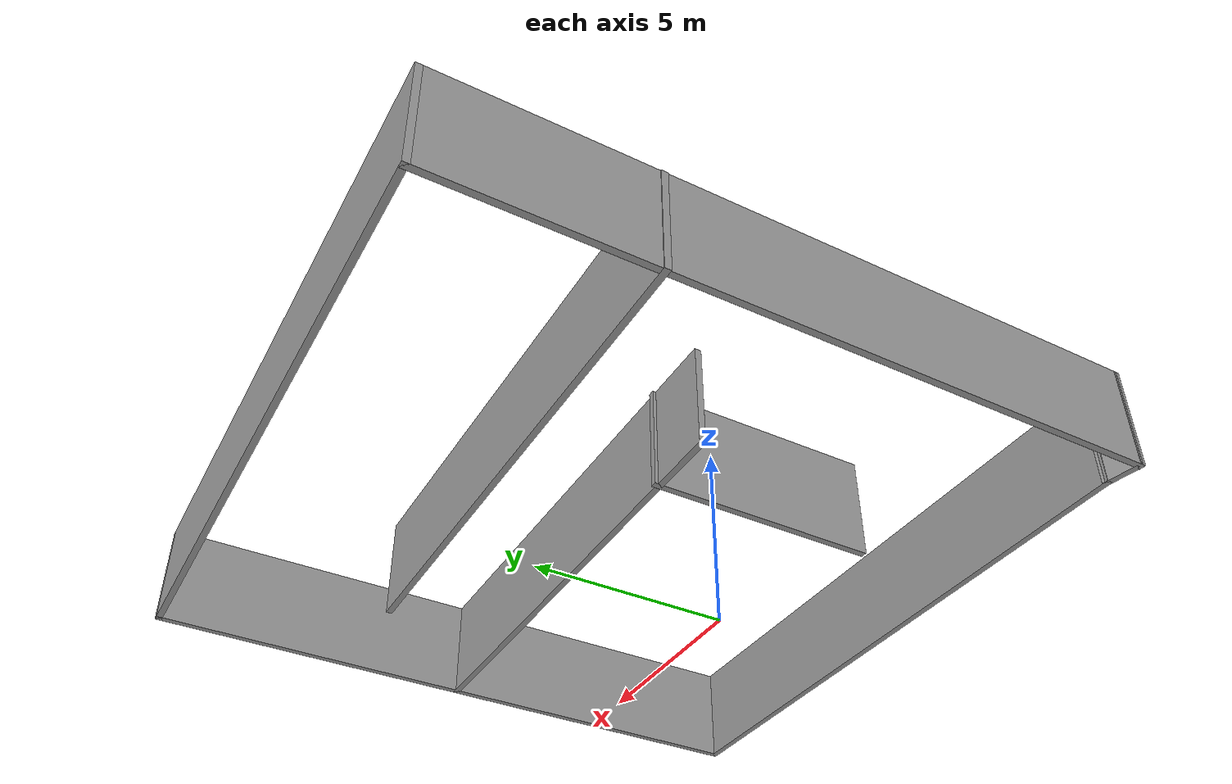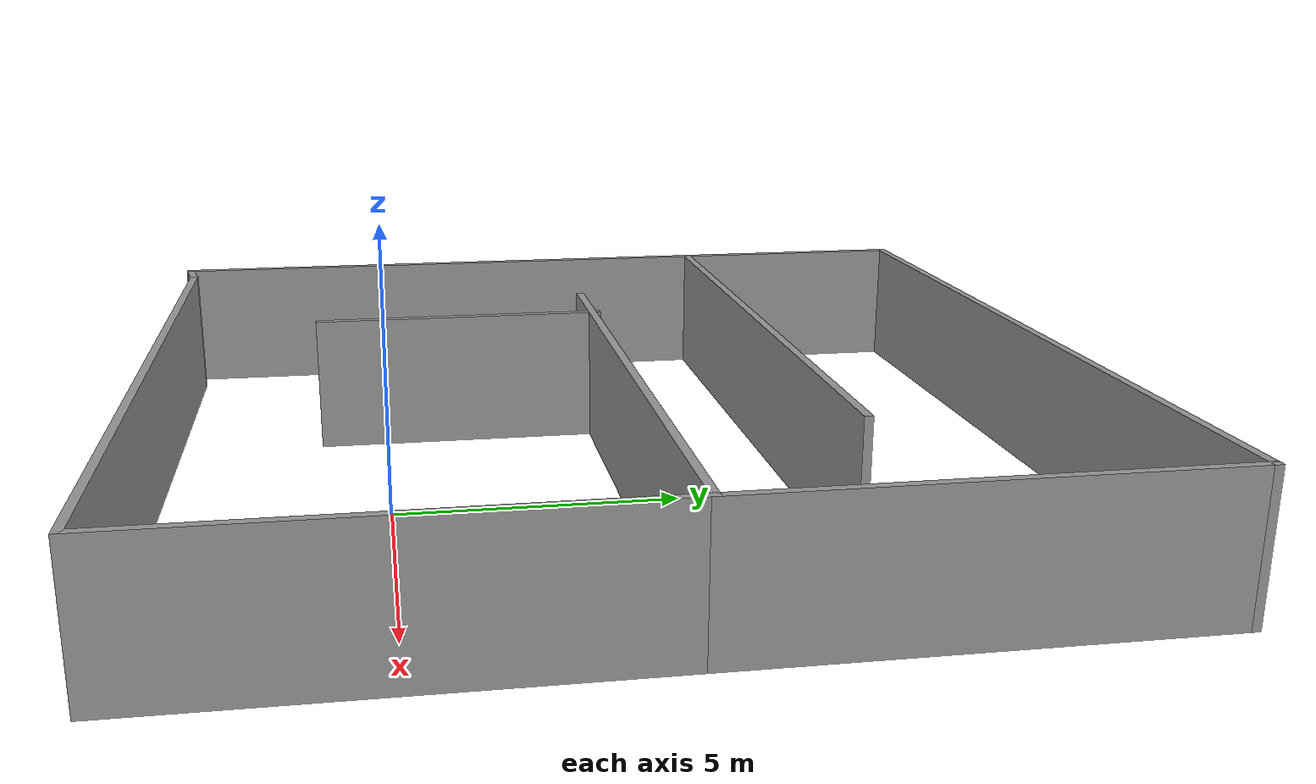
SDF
<?xml version='1.0'?>
<sdf version='1.7'>
  <model name='ststic_maze'>
    <pose>-1.4573 3.881 0 0 -0 0</pose>
    <link name='Wall_11'>
      <collision name='Wall_11_Collision'>
        <geometry>
          <box>
            <size>13 0.15 2.5</size>
          </box>
        </geometry>
        <pose>0 0 1.25 0 -0 0</pose>
      </collision>
      <visual name='Wall_11_Visual'>
        <pose>0 0 1.25 0 -0 0</pose>
        <geometry>
          <box>
            <size>13 0.15 2.5</size>
          </box>
        </geometry>
        <material>
          <script>
            <uri>file://media/materials/scripts/gazebo.material</uri>
            <name>Gazebo/Grey</name>
          </script>
          <ambient>1 1 1 1</ambient>
        </material>
        <meta>
          <layer>0</layer>
        </meta>
      </visual>
      <pose>-1.50972 3.27833 0 0 -0 0</pose>
    </link>
    <link name='Wall_13'>
      <collision name='Wall_13_Collision'>
        <geometry>
          <box>
            <size>5.5 0.15 2.5</size>
          </box>
        </geometry>
        <pose>0 0 1.25 0 -0 0</pose>
      </collision>
      <visual name='Wall_13_Visual'>
        <pose>0 0 1.25 0 -0 0</pose>
        <geometry>
          <box>
            <size>5.5 0.15 2.5</size>
          </box>
        </geometry>
        <material>
          <script>
            <uri>file://media/materials/scripts/gazebo.material</uri>
            <name>Gazebo/Grey</name>
          </script>
          <ambient>1 1 1 1</ambient>
        </material>
        <meta>
          <layer>0</layer>
        </meta>
      </visual>
      <pose>-2.55084 -2.39451 0 0 -0 -1.5708</pose>
    </link>
    <link name='Wall_2'>
      <collision name='Wall_2_Collision'>
        <geometry>
          <box>
            <size>15.25 0.15 2.5</size>
          </box>
        </geometry>
        <pose>0 0 1.25 0 -0 0</pose>
      </collision>
      <visual name='Wall_2_Visual'>
        <pose>0 0 1.25 0 -0 0</pose>
        <geometry>
          <box>
            <size>15.25 0.15 2.5</size>
          </box>
        </geometry>
        <material>
          <script>
            <uri>file://media/materials/scripts/gazebo.material</uri>
            <name>Gazebo/Grey</name>
          </script>
          <ambient>1 1 1 1</ambient>
        </material>
        <meta>
          <layer>0</layer>
        </meta>
      </visual>
      <pose>0.384719 -7.89337 0 0 -0 0</pose>
    </link>
    <link name='Wall_3'>
      <collision name='Wall_3_Collision'>
        <geometry>
          <box>
            <size>8.25 0.15 2.5</size>
          </box>
        </geometry>
        <pose>0 0 1.25 0 -0 0</pose>
      </collision>
      <visual name='Wall_3_Visual'>
        <pose>0 0 1.25 0 -0 0</pose>
        <geometry>
          <box>
            <size>8.25 0.15 2.5</size>
          </box>
        </geometry>
        <material>
          <script>
            <uri>file://media/materials/scripts/gazebo.material</uri>
            <name>Gazebo/Grey</name>
          </script>
          <ambient>1 1 1 1</ambient>
        </material>
        <meta>
          <layer>0</layer>
        </meta>
      </visual>
      <pose>7.93472 -3.84337 0 0 -0 1.5708</pose>
    </link>
    <link name='Wall_4'>
      <collision name='Wall_4_Collision'>
        <geometry>
          <box>
            <size>12.25 0.15 2.5</size>
          </box>
        </geometry>
        <pose>0 0 1.25 0 -0 0</pose>
      </collision>
      <visual name='Wall_4_Visual'>
        <pose>0 0 1.25 0 -0 0</pose>
        <geometry>
          <box>
            <size>12.25 0.15 2.5</size>
          </box>
        </geometry>
        <material>
          <script>
            <uri>file://media/materials/scripts/gazebo.material</uri>
            <name>Gazebo/Grey</name>
          </script>
          <ambient>1 1 1 1</ambient>
        </material>
        <meta>
          <layer>0</layer>
        </meta>
      </visual>
      <pose>1.88472 0.206626 0 0 -0 3.14159</pose>
    </link>
    <link name='Wall_6'>
      <collision name='Wall_6_Collision'>
        <geometry>
          <box>
            <size>8 0.15 2.5</size>
          </box>
        </geometry>
        <pose>0 0 1.25 0 -0 0</pose>
      </collision>
      <visual name='Wall_6_Visual'>
        <pose>0 0 1.25 0 -0 0</pose>
        <geometry>
          <box>
            <size>8 0.15 2.5</size>
          </box>
        </geometry>
        <material>
          <script>
            <uri>file://media/materials/scripts/gazebo.material</uri>
            <name>Gazebo/Grey</name>
          </script>
          <ambient>1 1 1 1</ambient>
        </material>
        <meta>
          <layer>0</layer>
        </meta>
      </visual>
      <pose>7.93472 4.13163 0 0 -0 1.5708</pose>
    </link>
    <link name='Wall_7'>
      <collision name='Wall_7_Collision'>
        <geometry>
          <box>
            <size>16 0.15 2.5</size>
          </box>
        </geometry>
        <pose>0 0 1.25 0 -0 0</pose>
      </collision>
      <visual name='Wall_7_Visual'>
        <pose>0 0 1.25 0 -0 0</pose>
        <geometry>
          <box>
            <size>16 0.15 2.5</size>
          </box>
        </geometry>
        <material>
          <script>
            <uri>file://media/materials/scripts/gazebo.material</uri>
            <name>Gazebo/Grey</name>
          </script>
          <ambient>1 1 1 1</ambient>
        </material>
        <meta>
          <layer>0</layer>
        </meta>
      </visual>
      <pose>0.009719 8.05663 0 0 -0 3.14159</pose>
    </link>
    <link name='Wall_8'>
      <collision name='Wall_8_Collision'>
        <geometry>
          <box>
            <size>16.25 0.15 2.5</size>
          </box>
        </geometry>
        <pose>0 0 1.25 0 -0 0</pose>
      </collision>
      <visual name='Wall_8_Visual'>
        <pose>0 0 1.25 0 -0 0</pose>
        <geometry>
          <box>
            <size>16.25 0.15 2.5</size>
          </box>
        </geometry>
        <material>
          <script>
            <uri>file://media/materials/scripts/gazebo.material</uri>
            <name>Gazebo/Grey</name>
          </script>
          <ambient>1 1 1 1</ambient>
        </material>
        <meta>
          <layer>0</layer>
        </meta>
      </visual>
      <pose>-7.91528 0.006626 0 0 -0 -1.5708</pose>
    </link>
    <link name='Wall_9'>
      <collision name='Wall_9_Collision'>
        <geometry>
          <box>
            <size>0.914853 0.15 2.5</size>
          </box>
        </geometry>
        <pose>0 0 1.25 0 -0 0</pose>
      </collision>
      <visual name='Wall_9_Visual'>
        <pose>0 0 1.25 0 -0 0</pose>
        <geometry>
          <box>
            <size>0.914853 0.15 2.5</size>
          </box>
        </geometry>
        <material>
          <script>
            <uri>file://media/materials/scripts/gazebo.material</uri>
            <name>Gazebo/Grey</name>
          </script>
          <ambient>1 1 1 1</ambient>
        </material>
        <meta>
          <layer>0</layer>
        </meta>
      </visual>
      <pose>-7.54028 -7.96837 0 0 -0 0.197396</pose>
    </link>
    <static>1</static>
  </model>
</sdf>
